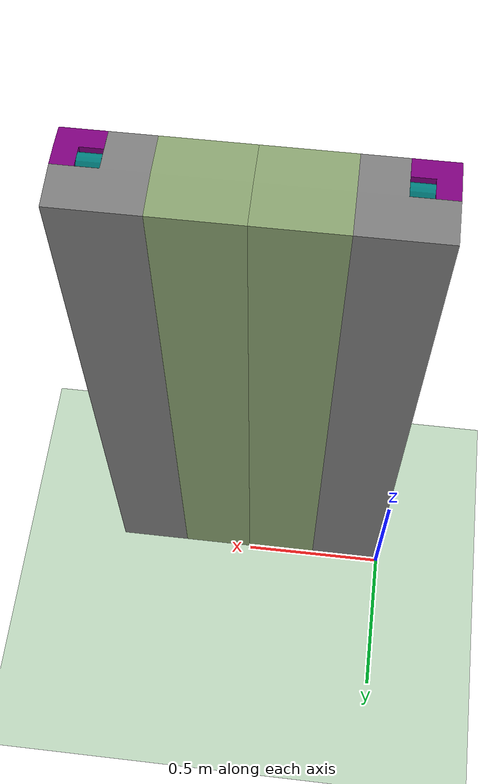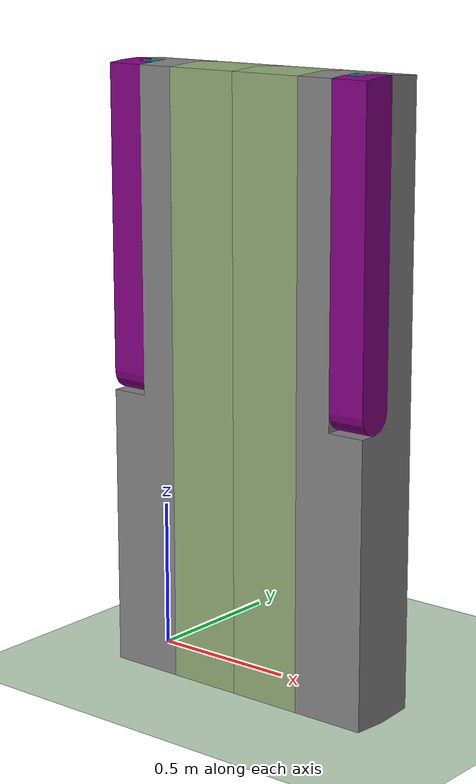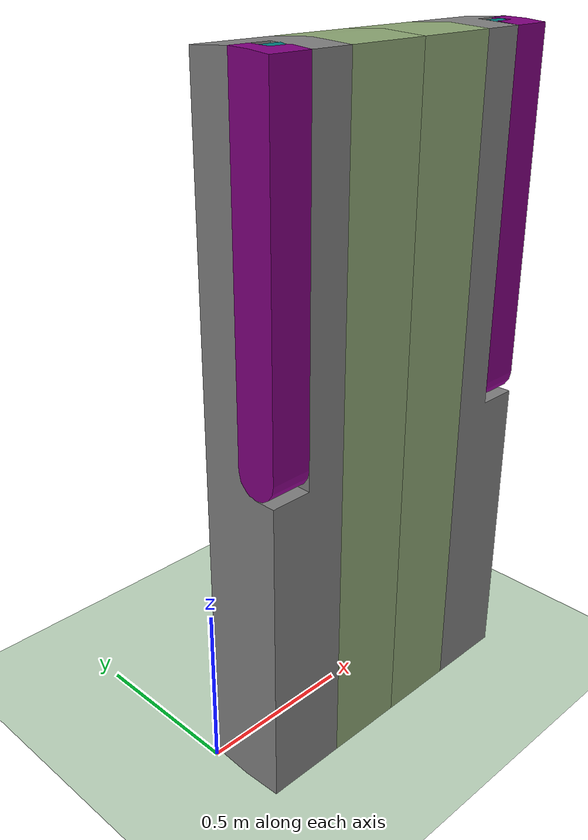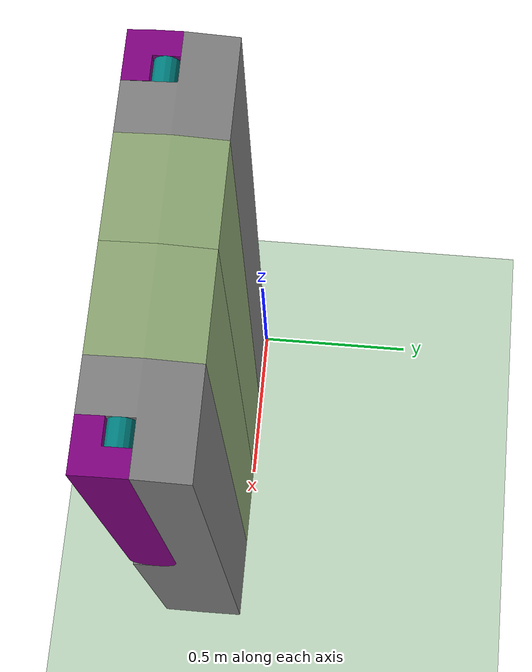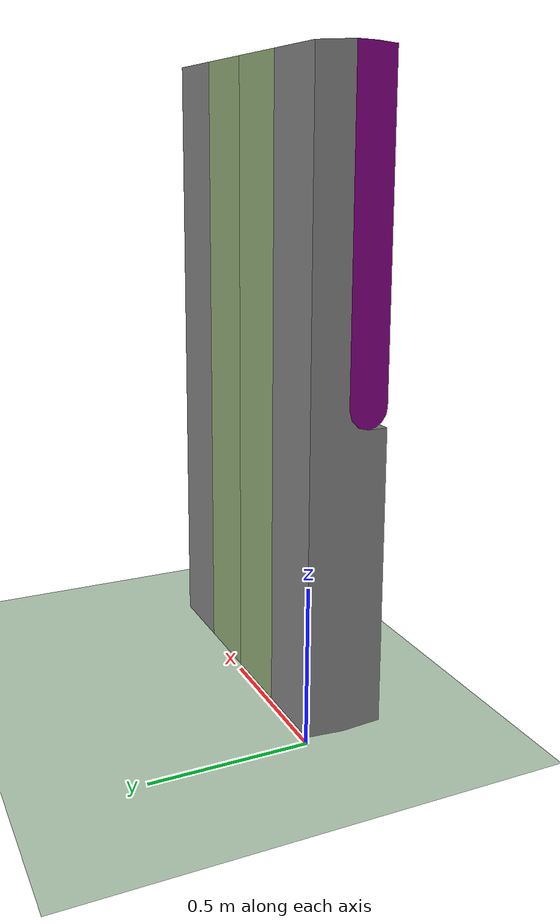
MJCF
<mujoco>
    <compiler meshdir="binary_meshes" angle="degree" />

    <option timestep="0.001" integrator="RK4" gravity="0 0 -9.81"/>

    <default>
        <joint limited="true" damping="30" armature="0.05" stiffness="0" actuatorfrcrange="-400 400"/>
        <geom condim="3" friction="1.5 0.005 0.0001" density="100" contype="0" conaffinity="0"/>
        <motor ctrllimited="true" ctrlrange="-1 1" gear="120"/>
    </default>

    <asset>
    <!--this scale makes it so that the robot is 1 meter in height, assuming mujoco base units are in meters-->
        <mesh name="base" file="TARS2_base_link_1.STL"  scale="2 2 2"/>
        <mesh name="middle_left" file="TARS2_middleslab_3.STL" scale="2 2 2"/>
        <mesh name="left" file="TARS2_leftslab_1.STL" scale="2 2 2"/>
        <mesh name="left_upper_arm" file="TARS2_leftarm1_1.STL"  scale="2 2 2"/>
        <mesh name="left_lower_arm" file="TARS2_leftarm2_1.STL" scale="2 2 2"/>
        <mesh name="middle_right" file="TARS2_middleslab_2.STL" scale="2 2 2"/>
        <mesh name="right" file="TARS2_rightslab_1.STL" scale="2 2 2"/>
        <mesh name="right_upper_arm" file="TARS2_rightarm1_1.STL" scale="2 2 2"/>
        <mesh name="right_lower_arm" file="TARS2_leftarm2_2.STL" scale="2 2 2"/>
    </asset>

    <worldbody>
        <light name="sun" pos="0 0 6" dir="0 0 -1" diffuse="1 1 1" specular="0.3 0.3 0.3"/>
        <geom name="floor" type="plane" size="50 50 0.1" rgba="0.75 0.85 0.75 1" friction="1.2 0.005 0.0001" contype="1" conaffinity="1" />
        <!--BASE-->
        <body name="base_link" euler="90 0 0">
            <freejoint name="root" />
            <geom type="mesh" mesh="base" rgba="0.35 0.45 0.75 1" contype="1" conaffinity="0" />
            <!--LEFT CHAIN-->
            <!--LEFT BASE LINK-->
            <body name="left_base_link">
                <joint name="r_lm" type="hinge" axis="1 0 0" pos="0 1 0.15" range="-355 355" damping="100" />
                <joint name="ud_lm" type="slide" axis="0 1 0" range="-0.2 0.2" damping="100" actuatorfrcrange="-400 400"/>
                <geom type="mesh" mesh="middle_left" rgba="0.55 0.65 0.45 1" contype="1" conaffinity="0" />
                <!--LEFT LINK-->
                <body name="left_link">
                    <joint name="r_l" type="hinge" axis="1 0 0" pos="0 1 0.15" range="-355 355" damping="100" />
                    <joint name="ud_l" type="slide" axis="0 1 0" range="-0.2 0.2" damping="100" actuatorfrcrange="-400 400"/>
                    <geom type="mesh" mesh="left" rgba="0.5 0.5 0.5 1" margin="0.0003" gap="0.0001" solref="0.01 1" solimp="0.9 0.95 0.001" contype="1" conaffinity="0" />
                    <!--LEFT UPPER ARM-->
                    <body name="left_upper_arm">
                        <joint name="r_lu" type="hinge" axis="1 0 0" pos="0 1 0.2" range="0 270" damping="100" />
                        <geom name="left_upper_arm_geom" type="mesh" mesh="left_upper_arm" rgba="0.5 0 0.5 1" margin="0.0003" gap="0.0001" solref="0.01 1" solimp="0.9 0.95 0.001" contype="1" conaffinity="0" />
                        <!--LEFT LOWER ARM-->
                        <body name="left_lower_arm">
                            <joint name="r_ll" type="hinge" axis="1 0 0" pos="0 2 0.15" range="0 355" damping="100" />
                            <geom name="left_lower_arm_geom" type="mesh" mesh="left_lower_arm" rgba="0 0.5 0.5 1" margin="0.0003" gap="0.0001" solref="0.01 1" solimp="0.9 0.95 0.001" contype="1" conaffinity="0" />
                        </body>
                    </body>
                </body>
            </body>
            <!--RIGHT CHAIN-->
            <!--RIGHT BASE LINK-->
            <body name="right_base_link">
                <joint name="r_rm" type="hinge" axis="1 0 0" pos="0 1 0.15" range="-355 355" damping="100" />
                <joint name="ud_rm" type="slide" axis="0 1 0" range="-0.2 0.2" damping="100" actuatorfrcrange="-400 400"/>
                <geom type="mesh" mesh="middle_right" rgba="0.55 0.65 0.45 1" contype="1" conaffinity="0" />
                <!--RIGHT LINK-->
                <body name="right_link">
                    <joint name="r_r" type="hinge" axis="1 0 0" pos="0 1 0.15" range="-355 355" damping="100" />
                    <joint name="ud_r" type="slide" axis="0 1 0" range="-0.2 0.2" damping="100" actuatorfrcrange="-400 400"/>
                    <geom type="mesh" mesh="right" rgba="0.5 0.5 0.5 1" margin="0.0003" gap="0.0001" solref="0.01 1" solimp="0.9 0.95 0.001" contype="1" conaffinity="0" />
                    <!--RIGHT UPPER ARM-->
                    <body name="right_upper_arm">
                        <joint name="r_ru" type="hinge" axis="1 0 0" pos="0 1 0.2" range="0 270" damping="100" />
                        <geom name="right_upper_arm_geom" type="mesh" mesh="right_upper_arm" rgba="0.5 0 0.5 1" margin="0.0003" gap="0.0001" solref="0.01 1" solimp="0.9 0.95 0.001" contype="1" conaffinity="0" />
                        <!--RIGHT LOWER ARM-->
                        <body name="right_lower_arm">
                            <joint name="r_rl" type="hinge" axis="1 0 0" pos="0 2 0.15" range="0 355" damping="100" />
                            <geom name="right_lower_arm_geom" type="mesh" mesh="right_lower_arm" rgba="0 0.5 0.5 1" margin="0.0003" gap="0.0001" solref="0.01 1" solimp="0.9 0.95 0.001" contype="1" conaffinity="0" />
                        </body>
                    </body>
                </body>
            </body>
        </body>
    </worldbody>

    <actuator>
        <position name="r_lm_pos" joint="r_lm" kp="2" ctrlrange="-355 355"/>
        <position name="ud_lm_pos" joint="ud_lm" kp="2" ctrlrange="-40 40"/>

        <position name="r_l_pos" joint="r_l" kp="2" ctrlrange="-355 355"/>
        <position name="ud_l_pos" joint="ud_l" kp="2" ctrlrange="-40 40"/>

        <position name="r_lu_pos" joint="r_lu" kp="2" ctrlrange="0 355"/>
        <position name="r_ll_pos" joint="r_ll" kp="2" ctrlrange="0 355"/>

        <position name="r_rm_pos" joint="r_rm" kp="2" ctrlrange="-355 355"/>
        <position name="ud_rm_pos" joint="ud_rm" kp="2" ctrlrange="-40 40"/>

        <position name="r_r_pos" joint="r_r" kp="2" ctrlrange="-355 355"/>
        <position name="ud_r_pos" joint="ud_r" kp="2" ctrlrange="-40 40"/>

        <position name="r_ru_pos" joint="r_ru" kp="2" ctrlrange="0 355"/>
        <position name="r_rl_pos" joint="r_rl" kp="2" ctrlrange="0 355"/>

    </actuator>

    <keyframe>
        <!--         base link  x y z   w   x     y z     r_lm  ud_lm  r_l  ud_l     r_lu    r_ll  r_rm  ud_rm   r_r  ud_r  r_ru   r_rl-->
        <key name="init0" qpos="0 0 0.2 0.5 0.866 0 0     0     0     -1    0        2.2     2     0     0      -1    0     2.2     2"
            ctrl="0 0 -114 0 250.8 228 0 0 -114 0 250.8 228" /> <!--x with middle links tilted forward and side links tilted back-->
        <key name="init1" qpos="0 0 0.2 0.5 0.866 0 0    -1     0      1    0        1.2     2    -1     0       1    0     1.2     2"
            ctrl="-114 0 114 0 136.8 228 -114 0 114 0 136.8 228"/> <!--x with middle links tilted back and side links tilted forward-->
        <key name="init2" qpos="0 0 0.2 0.5 0.866 0 0    -1     0      0    0        2.6     2     0    0       -1    0     2.6     2"
            ctrl="-114 0 0 0 296.4 228 0 0 -114 0 296.4 228"/> <!--x with middle right link tilted forward and all other links tilted back-->
        <key name="init3" qpos="0 0 0.2 0.5 0.866 0 0     0     0     -1    0        2.6     2    -1    0        0    0     2.6     2"
            ctrl="0 0 -114 0 296.4 228 -114 0 0 0 296.4 228"/> <!--x with middle left link tilted forward and all other links tilted back-->
    </keyframe>

</mujoco>
